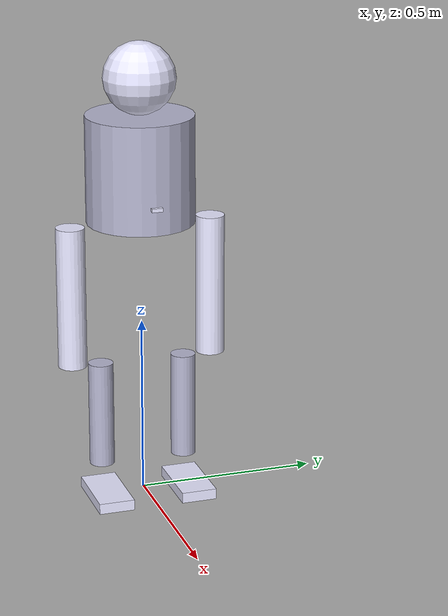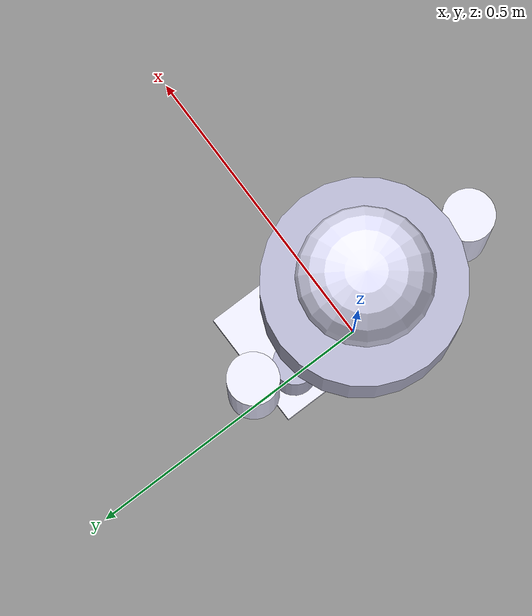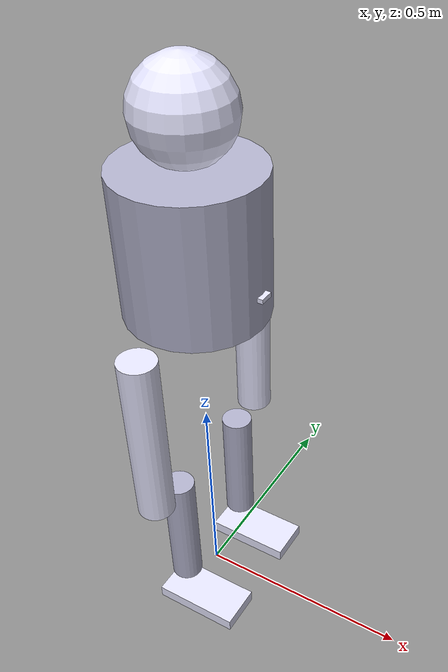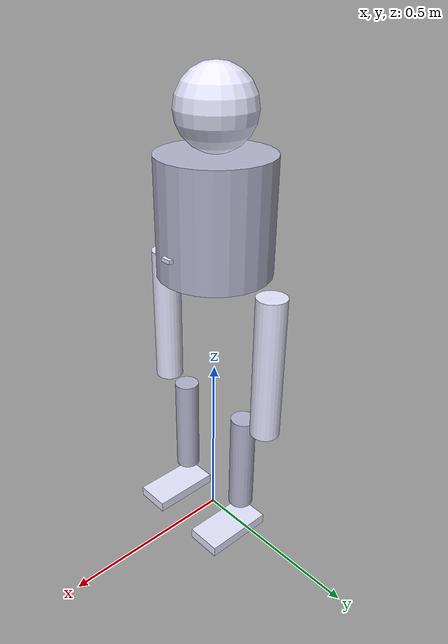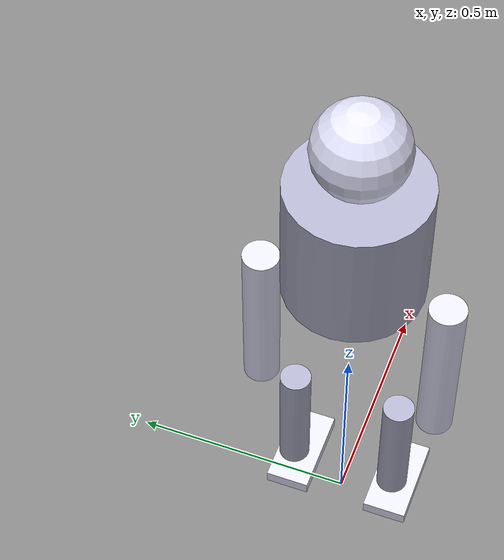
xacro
<?xml version="1.0"?>
<robot xmlns:xacro="http://www.ros.org/wiki/xacro" name="myrobot_st2">
  <!-- Body properties -->
  <xacro:property name="body_radius" value="0.15" />
  <xacro:property name="body_length" value="0.3" />
  <xacro:property name="body_mass" value="5.0" />
  <xacro:property name="body_ixx" value="0.1" />
  <xacro:property name="body_iyy" value="0.1" />
  <xacro:property name="body_izz" value="0.05" />

  <!-- Hip properties -->
  <xacro:property name="hip_radius" value="0.05" />

  <!-- Thigh properties -->
  <xacro:property name="thigh_radius" value="0.04" />
  <xacro:property name="thigh_length" value="0.4" />
  <xacro:property name="thigh_mass" value="1.5" />
  <xacro:property name="thigh_ixx" value="0.02" />
  <xacro:property name="thigh_iyy" value="0.02" />
  <xacro:property name="thigh_izz" value="0.01" />

  <!-- Knee properties -->
  <xacro:property name="knee_radius" value="0.04" />

  <!-- Shin properties -->
  <xacro:property name="shin_radius" value="0.035" />
  <xacro:property name="shin_length" value="0.30" />
  <xacro:property name="shin_mass" value="1.0" />
  <xacro:property name="shin_ixx" value="0.015" />
  <xacro:property name="shin_iyy" value="0.015" />
  <xacro:property name="shin_izz" value="0.008" />

  <!-- Ankle properties -->
  <xacro:property name="ankle_radius" value="0.03" />

  <!-- Foot properties -->
  <xacro:property name="foot_length" value="0.2" />
  <xacro:property name="foot_width" value="0.1" />
  <xacro:property name="foot_height" value="0.03" />
  <xacro:property name="foot_offset_front" value="0.05" />
  <xacro:property name="foot_mass" value="0.3" />
  <xacro:property name="foot_ixx" value="0.001" />
  <xacro:property name="foot_iyy" value="0.001" />
  <xacro:property name="foot_izz" value="0.0005" />

  <!-- Head properties -->
  <xacro:property name="head_radius" value="0.1" />
  <xacro:property name="head_mass" value="0.2" />
  <xacro:property name="head_ixx" value="0.005" />
  <xacro:property name="head_iyy" value="0.005" />
  <xacro:property name="head_izz" value="0.005" />

  <!-- IMU properties -->
  <xacro:property name="imu_length" value="0.02" />
  <xacro:property name="imu_width" value="0.03" />
  <xacro:property name="imu_height" value="0.01" />
  <xacro:property name="imu_mass" value="0.01" />
  <xacro:property name="imu_ixx" value="0.00001" />
  <xacro:property name="imu_iyy" value="0.00001" />
  <xacro:property name="imu_izz" value="0.00001" />

  <!-- Materials -->
  <material name="robot_material_1">
    <color rgba="0.7 0.7 0.8 1"/>
  </material>
  <material name="robot_material_2">
    <color rgba="0.9 0.9 1.0 1"/>
  </material>

  <!-- altura total -->
  <xacro:property name="leg_total_length" value="${thigh_length + shin_length + 2 * ankle_radius + foot_height}" />
  <!-- body_offset: body_length/2 desloca o posicao Z do centro do cilindro (corpo do robo) para a sua base inferior, assim nao fica metade do corpo enterrado no chao -->
  <!-- body_offset: leg_total_length da espaco para as pernas, para elas nao ficarem enterradas no chao -->
  <xacro:property name="body_offset" value="${body_length/2 + leg_total_length}" />
  <!-- Conversao de graus para radianos -->
  <xacro:property name="deg_to_rad" value="${3.14159 / 180}" />

  <!-- Body (main cylinder) -->
  <link name="base_link">
    <visual>
      <origin xyz="0 0 ${body_offset}"/>
      <geometry>
        <cylinder length="${body_length}" radius="${body_radius}"/>
      </geometry>
      <material name="robot_material_1"/>
    </visual>
    <collision>
      <origin xyz="0 0 ${body_offset}"/>
      <geometry>
        <cylinder length="${body_length}" radius="${body_radius}"/>
      </geometry>
    </collision>
    <inertial>
      <mass value="${body_mass}"/>
      <inertia ixx="${body_ixx}" ixy="0.0" ixz="0.0" iyy="${body_iyy}" iyz="0.0" izz="${body_izz}"/>
    </inertial>
  </link>

  <!-- IMU (simulated sensor, offset from body center) -->
  <link name="imu_link">
    <visual>
      <origin xyz="0 0 0" rpy="0 0 0"/>
      <geometry>
        <box size="${imu_length} ${imu_width} ${imu_height}"/>
      </geometry>
      <material name="robot_material_2"/>
    </visual>
    <collision>
      <origin xyz="0 0 0" rpy="0 0 0"/>
      <geometry>
        <box size="${imu_length} ${imu_width} ${imu_height}"/>
      </geometry>
    </collision>
    <inertial>
      <mass value="${imu_mass}"/>
      <inertia ixx="${imu_ixx}" ixy="0.0" ixz="0.0" iyy="${imu_iyy}" iyz="0.0" izz="${imu_izz}"/>
    </inertial>
  </link>

  <joint name="base_to_imu" type="fixed">
    <parent link="base_link"/>
    <child link="imu_link"/>
    <!-- Z: Como o corpo principal e posicionado em 0 0 0, body_offset move a IMU para o centro do corpo -->
    <!-- Z: body_length/4 move a IMU um pouco para baixo, como se estivesse posicionado ela na cintura -->
    <origin xyz="${body_radius} 0 ${body_offset - body_length/4}" rpy="0 0 0"/>
  </joint>

  <!-- Head (sphere) -->
  <link name="head_link">
    <visual>
      <!-- Z: head_radius shifts the Z plane from the heads's center to its base -->
      <origin rpy="0 0 0" xyz="0 0 ${head_radius}"/>
      <geometry>
        <sphere radius="${head_radius}"/>
      </geometry>
      <material name="robot_material_2"/>
    </visual>
    <collision>
      <origin rpy="0 0 0" xyz="0 0 ${head_radius}"/>
      <geometry>
        <sphere radius="${head_radius}"/>
      </geometry>
    </collision>
    <inertial>
      <mass value="${head_mass}"/>
      <inertia ixx="${head_ixx}" ixy="0.0" ixz="0.0" iyy="${head_iyy}" iyz="0.0" izz="${head_izz}"/>
    </inertial>
  </link>

  <!-- Head joint: body to head -->
  <joint name="base_to_head" type="fixed">
    <parent link="base_link"/>
    <child link="head_link"/>
    <!-- Z: Como o corpo principal e posicionado em 0 0 0, body_offset move a joint para o centro do corpo -->
    <!-- Z: body_length/2 move a joint para o topo do corpo -->
	  <origin xyz="0 0 ${body_offset + body_length/2}"/>
  </joint>

  <!-- Leg macro (creates left/right leg: thigh, shin, foot) -->
  <xacro:macro name="leg" params="prefix reflect">
    <!-- Thigh -->
    <link name="${prefix}_thigh_link">
      <visual>
        <!-- Z: hip_radius desloca o centro da coxa para fora da esfera/articulacao do quadril -->
        <!-- Z: thigh_length/2 desloca a coxa para baixo, para que seu topo encoste na esfera/articulacao do quadril -->
        <origin rpy="0 0 0" xyz="0 0 ${-thigh_length/2 - hip_radius}"/>
        <geometry>
          <cylinder length="${thigh_length}" radius="${thigh_radius}"/>
        </geometry>
        <material name="robot_material_2"/>
      </visual>
      <collision>
        <origin rpy="0 0 0" xyz="0 0 ${-thigh_length/2 - hip_radius}"/>
        <geometry>
          <cylinder length="${thigh_length}" radius="${thigh_radius}"/>
        </geometry>
      </collision>
      <inertial>
        <mass value="${thigh_mass}"/>
        <inertia ixx="${thigh_ixx}" ixy="0.0" ixz="0.0" iyy="${thigh_iyy}" iyz="0.0" izz="${thigh_izz}"/>
      </inertial>
    </link>

    <!-- Hip joint: base_link to thigh -->
    <joint name="base_to_${prefix}_thigh" type="revolute">
      <parent link="base_link"/>
      <child link="${prefix}_thigh_link"/>
      <!-- Z: Como o corpo principal e posicionado em 0 0 0, body_offset move o centro da esfera/articulacao para o centro do corpo -->
      <!-- Z: Diminuir body_length/2 move o centro da esfera/articulacao para a base inferior do corpo -->
      <!-- Z: Somar hip_radius faz a base inferior da esfera/articulacao do quadril coincidir com a base inferior do corpo -->
      <!-- Y: body_radius posiciona o centro da esfera/articulacao do quadril na borda do corpo -->
      <!-- Y: hip_radius tira a esfera/articulacao de dentro do corpo, caso contrario metade da esfera/articulacao ficaria dentro do corpo -->
      <origin xyz="0 ${(body_radius + hip_radius) * reflect} ${body_offset - body_length/2 + hip_radius}"/>
      <axis xyz="0 1 0"/>
      <limit lower="${-90 * deg_to_rad}" upper="${90 * deg_to_rad}" effort="50" velocity="5"/>
    </joint>

    <!-- Shin -->
    <link name="${prefix}_shin_link">
      <visual>
        <!-- Z: knee_radius desloca o centro da canela para fora da esfera/articulacao do joelho -->
        <!-- Z: shin_length/2 desloca a canela para baixo, para que seu topo encoste na esfera/articulacao do joelho -->
        <origin rpy="0 0 0" xyz="0 0 ${-shin_length/2 - knee_radius}"/>
        <geometry>
          <cylinder length="${shin_length}" radius="${shin_radius}"/>
        </geometry>
        <material name="robot_material_1"/>
      </visual>
      <collision>
        <origin rpy="0 0 0" xyz="0 0 ${-shin_length/2 - knee_radius}"/>
        <geometry>
          <cylinder length="${shin_length}" radius="${shin_radius}"/>
        </geometry>
      </collision>
      <inertial>
        <mass value="${shin_mass}"/>
        <inertia ixx="${shin_ixx}" ixy="0.0" ixz="0.0" iyy="${shin_iyy}" iyz="0.0" izz="${shin_izz}"/>
      </inertial>
    </link>

    <!-- Knee joint: thigh to shin -->
    <joint name="${prefix}_knee" type="revolute">
      <parent link="${prefix}_thigh_link"/>
      <child link="${prefix}_shin_link"/>
      <!-- Z: Como o parent e a coxa, o centro da esfera/articulacao do joelho coincide inicialmente com o centro da esfera/articulacao do quadril -->
      <!-- Z: Diminuir hip_radius + thigh_length faz o centro da esfera/articulacao do joelho coincidir com a base inferior da coxa -->
      <!-- Z: Somar knee_radius faz a base inferior da esfera/articulacao do joelho coincidir com a base inferior da coxa -->
      <!-- Y: thigh_radius posiciona o centro esfera/articulacao do joelho na borda da coxa -->
      <!-- Y: knee_radius tira a esfera/articulacao de dentro da coxa, caso contrario metade da esfera/articulacao ficaria dentro da coxa -->
      <origin xyz="0 ${(-thigh_radius + -knee_radius) * reflect} ${-hip_radius - thigh_length + knee_radius}"/>
      <axis xyz="0 1 0"/>
      <limit lower="${0 * deg_to_rad}" upper="${135 * deg_to_rad}" effort="40" velocity="5"/>
    </joint>

    <!-- Foot -->
    <link name="${prefix}_foot_link">
      <visual>
        <!-- Z: ankle_radius desloca o centro do pe para fora da esfera/articulacao do tornozelo -->
        <!-- Z: foot_height/2 faz o pe sair da articulacao do tornozelo, coincidindo seu topo com o raio da esfera/articulacao -->
        <!-- X: foot_offset_front desloca o pe um pouco para frente, para parecer um pe normal em que ele fica mais para frente do que para tras -->
        <origin rpy="0 0 0" xyz="${foot_offset_front} 0 ${-ankle_radius - foot_height/2}"/>
        <geometry>
          <box size="${foot_length} ${foot_width} ${foot_height}"/>
        </geometry>
        <material name="robot_material_2"/>
      </visual>
      <collision>
        <origin rpy="0 0 0" xyz="${foot_offset_front} 0 ${-ankle_radius - foot_height/2}"/>
        <geometry>
          <box size="${foot_length} ${foot_width} ${foot_height}"/>
        </geometry>
      </collision>
      <inertial>
        <mass value="${foot_mass}"/>
        <inertia ixx="${foot_ixx}" ixy="0.0" ixz="0.0" iyy="${foot_iyy}" iyz="0.0" izz="${foot_izz}"/>
      </inertial>
    </link>

    <!-- Ankle joint: shin to foot -->
    <joint name="${prefix}_ankle_joint" type="revolute">
      <parent link="${prefix}_shin_link"/>
      <child link="${prefix}_foot_link"/>
      <!-- Z: Como o parent e a canela, o centro da esfera/articulacao do tornozelo coincide inicialmente com o centro da esfera/articulacao do joelho -->
      <!-- Z: Diminuir knee_radius + shin_length faz o centro da esfera/articulacao do tornozelo coincidir com a base inferior da canela -->
      <!-- Z: Diminuir ankle_radius faz a base superior da esfera/articulacao do tornozelo coincidir com a base inferior da canela -->
      <origin xyz="0 0 ${-knee_radius - shin_length - ankle_radius}"/>
      <axis xyz="0 1 0"/>
      <limit lower="${-30 * deg_to_rad}" upper="${135 * deg_to_rad}" effort="40" velocity="5"/>
    </joint>

  </xacro:macro>

  <!-- Instantiate right and left legs -->
  <xacro:leg prefix="right" reflect="-1" />
  <xacro:leg prefix="left" reflect="1" />

</robot>
